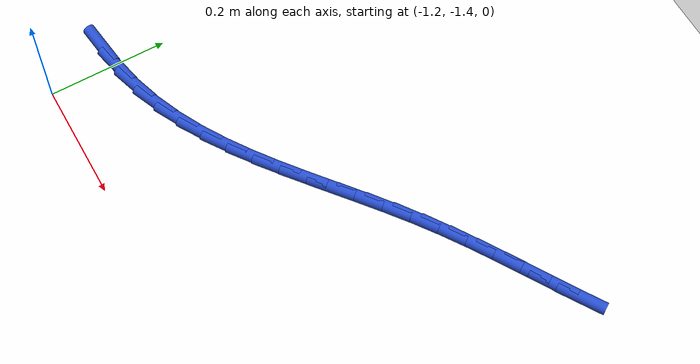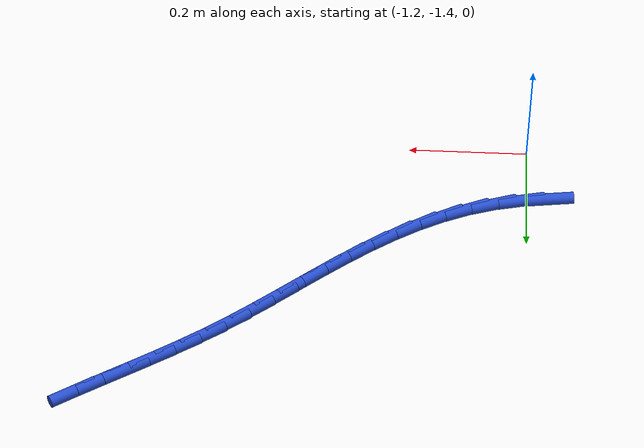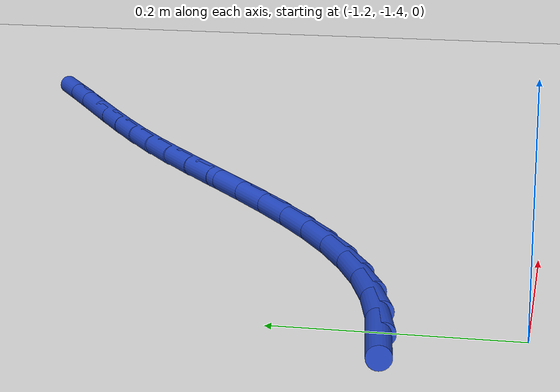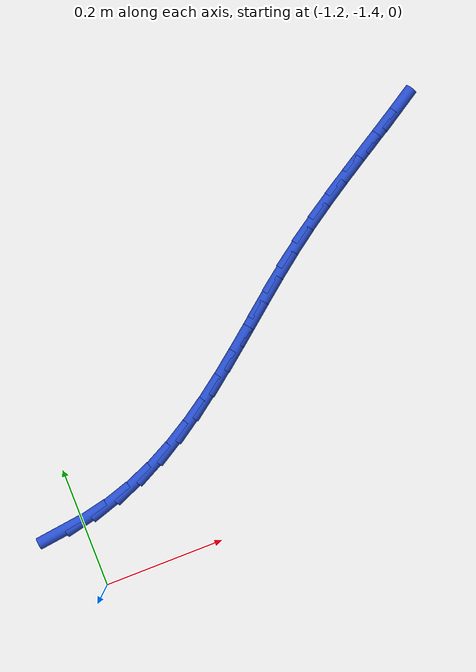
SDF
<sdf version="1.6">
 <world name="default">
  <model name="ground_plane">
   <static>1</static>
   <link name="link">
    <collision name="collision">
     <geometry><plane><normal>0 0 1</normal><size>100 100</size></plane></geometry>
     <surface><friction><ode><mu>100</mu><mu2>50</mu2></ode></friction></surface>
    </collision>
    <visual name="visual">
     <cast_shadows>0</cast_shadows>
     <geometry><plane><normal>0 0 1</normal><size>100 100</size></plane></geometry>
     <material>
      <script><uri>file://media/materials/scripts/gazebo.material</uri><name>Gazebo/WhiteGlow</name></script>
     </material>
    </visual>
   </link>
  </model>
  <model name="line">
   <link name="link_119">
    <pose>-1.2385454231657282 -1.2920831169745757 0.01 0 1.57 0.12974137097983587</pose>
    <collision name="collision">
     <geometry><cylinder><radius>0.01</radius><length>0.08</length></cylinder></geometry>
    </collision>
    <visual name="visual">
     <material>
      <script><name>Gazebo/Blue</name><uri>file://media/materials/scripts/gazebo.material</uri></script>
     </material>
     <geometry><cylinder><radius>0.01</radius><length>0.08</length></cylinder></geometry>
    </visual>
   </link>
   <link name="link_120">
    <pose>-1.190887753083766 -1.285865016911802 0.01 0 1.57 0.21865833574234425</pose>
    <collision name="collision">
     <geometry><cylinder><radius>0.01</radius><length>0.08</length></cylinder></geometry>
    </collision>
    <visual name="visual">
     <material>
      <script><name>Gazebo/Blue</name><uri>file://media/materials/scripts/gazebo.material</uri></script>
     </material>
     <geometry><cylinder><radius>0.01</radius><length>0.08</length></cylinder></geometry>
    </visual>
   </link>
   <link name="link_121">
    <pose>-1.1445009329287426 -1.2755573511288831 0.01 0 1.57 0.31097961404792573</pose>
    <collision name="collision">
     <geometry><cylinder><radius>0.01</radius><length>0.08</length></cylinder></geometry>
    </collision>
    <visual name="visual">
     <material>
      <script><name>Gazebo/Blue</name><uri>file://media/materials/scripts/gazebo.material</uri></script>
     </material>
     <geometry><cylinder><radius>0.01</radius><length>0.08</length></cylinder></geometry>
    </visual>
   </link>
   <link name="link_122">
    <pose>-1.1000191727415436 -1.261260558598877 0.01 0 1.57 0.3996078558520396</pose>
    <collision name="collision">
     <geometry><cylinder><radius>0.01</radius><length>0.08</length></cylinder></geometry>
    </collision>
    <visual name="visual">
     <material>
      <script><name>Gazebo/Blue</name><uri>file://media/materials/scripts/gazebo.material</uri></script>
     </material>
     <geometry><cylinder><radius>0.01</radius><length>0.08</length></cylinder></geometry>
    </visual>
   </link>
   <link name="link_123">
    <pose>-1.057522264728132 -1.2433127946536922 0.01 0 1.57 0.4775546692220771</pose>
    <collision name="collision">
     <geometry><cylinder><radius>0.01</radius><length>0.08</length></cylinder></geometry>
    </collision>
    <visual name="visual">
     <material>
      <script><name>Gazebo/Blue</name><uri>file://media/materials/scripts/gazebo.material</uri></script>
     </material>
     <geometry><cylinder><radius>0.01</radius><length>0.08</length></cylinder></geometry>
    </visual>
   </link>
   <link name="link_124">
    <pose>-1.0167342762764864 -1.2222047378724308 0.01 0 1.57 0.5433781524849339</pose>
    <collision name="collision">
     <geometry><cylinder><radius>0.01</radius><length>0.08</length></cylinder></geometry>
    </collision>
    <visual name="visual">
     <material>
      <script><name>Gazebo/Blue</name><uri>file://media/materials/scripts/gazebo.material</uri></script>
     </material>
     <geometry><cylinder><radius>0.01</radius><length>0.08</length></cylinder></geometry>
    </visual>
   </link>
   <link name="link_125">
    <pose>-0.977373433648831 -1.198429571319184 0.01 0 1.57 0.5965066593585788</pose>
    <collision name="collision">
     <geometry><cylinder><radius>0.01</radius><length>0.08</length></cylinder></geometry>
    </collision>
    <visual name="visual">
     <material>
      <script><name>Gazebo/Blue</name><uri>file://media/materials/scripts/gazebo.material</uri></script>
     </material>
     <geometry><cylinder><radius>0.01</radius><length>0.08</length></cylinder></geometry>
    </visual>
   </link>
   <link name="link_126">
    <pose>-0.9391579631073919 -1.1724804780580438 0.01 0 1.57 0.6368878225001757</pose>
    <collision name="collision">
     <geometry><cylinder><radius>0.01</radius><length>0.08</length></cylinder></geometry>
    </collision>
    <visual name="visual">
     <material>
      <script><name>Gazebo/Blue</name><uri>file://media/materials/scripts/gazebo.material</uri></script>
     </material>
     <geometry><cylinder><radius>0.01</radius><length>0.08</length></cylinder></geometry>
    </visual>
   </link>
   <link name="link_127">
    <pose>-0.9018060909143945 -1.1448506411531025 0.01 0 1.57 0.664734574453249</pose>
    <collision name="collision">
     <geometry><cylinder><radius>0.01</radius><length>0.08</length></cylinder></geometry>
    </collision>
    <visual name="visual">
     <material>
      <script><name>Gazebo/Blue</name><uri>file://media/materials/scripts/gazebo.material</uri></script>
     </material>
     <geometry><cylinder><radius>0.01</radius><length>0.08</length></cylinder></geometry>
    </visual>
   </link>
   <link name="link_128">
    <pose>-0.8650360433320641 -1.116033243668451 0.01 0 1.57 0.6803297803828365</pose>
    <collision name="collision">
     <geometry><cylinder><radius>0.01</radius><length>0.08</length></cylinder></geometry>
    </collision>
    <visual name="visual">
     <material>
      <script><name>Gazebo/Blue</name><uri>file://media/materials/scripts/gazebo.material</uri></script>
     </material>
     <geometry><cylinder><radius>0.01</radius><length>0.08</length></cylinder></geometry>
    </visual>
   </link>
   <link name="link_129">
    <pose>-0.8285660466226253 -1.086521468668181 0.01 0 1.57 0.683900011944958</pose>
    <collision name="collision">
     <geometry><cylinder><radius>0.01</radius><length>0.08</length></cylinder></geometry>
    </collision>
    <visual name="visual">
     <material>
      <script><name>Gazebo/Blue</name><uri>file://media/materials/scripts/gazebo.material</uri></script>
     </material>
     <geometry><cylinder><radius>0.01</radius><length>0.08</length></cylinder></geometry>
    </visual>
   </link>
   <link name="link_130">
    <pose>-0.7921143270483043 -1.0568084992163844 0.01 0 1.57 0.6755510047324416</pose>
    <collision name="collision">
     <geometry><cylinder><radius>0.01</radius><length>0.08</length></cylinder></geometry>
    </collision>
    <visual name="visual">
     <material>
      <script><name>Gazebo/Blue</name><uri>file://media/materials/scripts/gazebo.material</uri></script>
     </material>
     <geometry><cylinder><radius>0.01</radius><length>0.08</length></cylinder></geometry>
    </visual>
   </link>
   <link name="link_131">
    <pose>-0.7553991108713252 -1.0273875183771524 0.01 0 1.57 0.6552553427552141</pose>
    <collision name="collision">
     <geometry><cylinder><radius>0.01</radius><length>0.08</length></cylinder></geometry>
    </collision>
    <visual name="visual">
     <material>
      <script><name>Gazebo/Blue</name><uri>file://media/materials/scripts/gazebo.material</uri></script>
     </material>
     <geometry><cylinder><radius>0.01</radius><length>0.08</length></cylinder></geometry>
    </visual>
   </link>
   <link name="link_132">
    <pose>-0.7181386243539148 -0.9987517092145769 0.01 0 1.57 0.6235650302302163</pose>
    <collision name="collision">
     <geometry><cylinder><radius>0.01</radius><length>0.08</length></cylinder></geometry>
    </collision>
    <visual name="visual">
     <material>
      <script><name>Gazebo/Blue</name><uri>file://media/materials/scripts/gazebo.material</uri></script>
     </material>
     <geometry><cylinder><radius>0.01</radius><length>0.08</length></cylinder></geometry>
    </visual>
   </link>
   <link name="link_133">
    <pose>-0.6800682289707252 -0.9713674923154364 0.01 0 1.57 0.5915161205449849</pose>
    <collision name="collision">
     <geometry><cylinder><radius>0.01</radius><length>0.08</length></cylinder></geometry>
    </collision>
    <visual name="visual">
     <material>
      <script><name>Gazebo/Blue</name><uri>file://media/materials/scripts/gazebo.material</uri></script>
     </material>
     <geometry><cylinder><radius>0.01</radius><length>0.08</length></cylinder></geometry>
    </visual>
   </link>
   <link name="link_134">
    <pose>-0.6412051437085031 -0.9452610716479648 0.01 0 1.57 0.5682664327566278</pose>
    <collision name="collision">
     <geometry><cylinder><radius>0.01</radius><length>0.08</length></cylinder></geometry>
    </collision>
    <visual name="visual">
     <material>
      <script><name>Gazebo/Blue</name><uri>file://media/materials/scripts/gazebo.material</uri></script>
     </material>
     <geometry><cylinder><radius>0.01</radius><length>0.08</length></cylinder></geometry>
    </visual>
   </link>
   <link name="link_135">
    <pose>-0.6017973706998316 -0.9200982046011209 0.01 0 1.57 0.5541147682399344</pose>
    <collision name="collision">
     <geometry><cylinder><radius>0.01</radius><length>0.08</length></cylinder></geometry>
    </collision>
    <visual name="visual">
     <material>
      <script><name>Gazebo/Blue</name><uri>file://media/materials/scripts/gazebo.material</uri></script>
     </material>
     <geometry><cylinder><radius>0.01</radius><length>0.08</length></cylinder></geometry>
    </visual>
   </link>
   <link name="link_136">
    <pose>-0.5620997042591345 -0.895534040255783 0.01 0 1.57 0.5490839060345821</pose>
    <collision name="collision">
     <geometry><cylinder><radius>0.01</radius><length>0.08</length></cylinder></geometry>
    </collision>
    <visual name="visual">
     <material>
      <script><name>Gazebo/Blue</name><uri>file://media/materials/scripts/gazebo.material</uri></script>
     </material>
     <geometry><cylinder><radius>0.01</radius><length>0.08</length></cylinder></geometry>
    </visual>
   </link>
   <link name="link_137">
    <pose>-0.5223669387008378 -0.8712237276928312 0.01 0 1.57 0.5532243421522898</pose>
    <collision name="collision">
     <geometry><cylinder><radius>0.01</radius><length>0.08</length></cylinder></geometry>
    </collision>
    <visual name="visual">
     <material>
      <script><name>Gazebo/Blue</name><uri>file://media/materials/scripts/gazebo.material</uri></script>
     </material>
     <geometry><cylinder><radius>0.01</radius><length>0.08</length></cylinder></geometry>
    </visual>
   </link>
   <link name="link_138">
    <pose>-0.48285386833936567 -0.846822415993144 0.01 0 1.57 0.566627629237763</pose>
    <collision name="collision">
     <geometry><cylinder><radius>0.01</radius><length>0.08</length></cylinder></geometry>
    </collision>
    <visual name="visual">
     <material>
      <script><name>Gazebo/Blue</name><uri>file://media/materials/scripts/gazebo.material</uri></script>
     </material>
     <geometry><cylinder><radius>0.01</radius><length>0.08</length></cylinder></geometry>
    </visual>
   </link>
  </model>
 </world>
</sdf>
